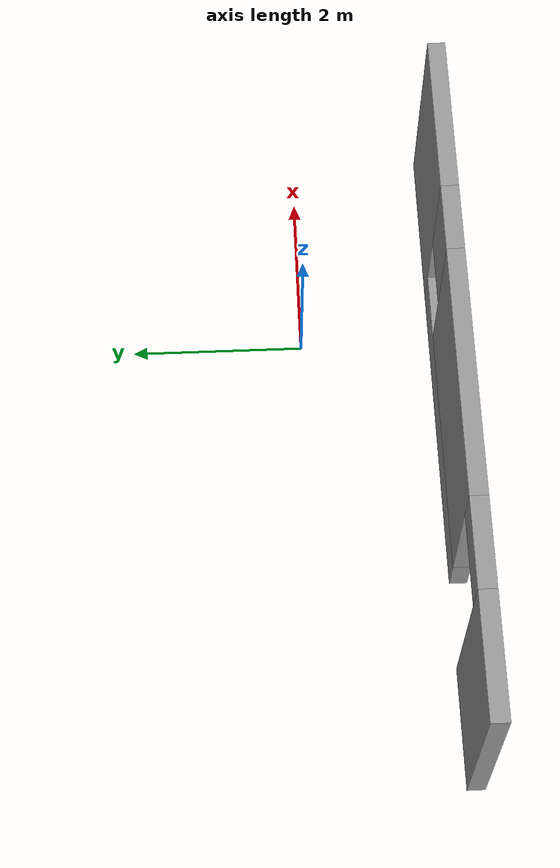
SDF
<?xml version='1.0'?>
<sdf version='1.4'>
  <model name='BuildingDefaultName'>
    <link name='Wall_0'>
      <pose>-1.435 -1.63 0 0 -0 3.14159</pose>
      <visual name='Wall_0_Visual_0'>
        <pose>-3.025 0 1.25 0 -0 0</pose>
        <geometry>
          <box>
            <size>1.92 0.2 2.5</size>
          </box>
        </geometry>
        <material>
          <script>
            <uri>file://media/materials/scripts/gazebo.material</uri>
            <name>Gazebo/Grey</name>
          </script>
        </material>
      </visual>
      <collision name='Wall_0_Collision_0'>
        <geometry>
          <box>
            <size>1.92 0.2 2.5</size>
          </box>
        </geometry>
        <pose>-3.025 0 1.25 0 -0 0</pose>
      </collision>
      <visual name='Wall_0_Visual_1'>
        <pose>3.305 0 1.25 0 -0 0</pose>
        <geometry>
          <box>
            <size>1.36 0.2 2.5</size>
          </box>
        </geometry>
        <material>
          <script>
            <uri>file://media/materials/scripts/gazebo.material</uri>
            <name>Gazebo/Grey</name>
          </script>
        </material>
      </visual>
      <collision name='Wall_0_Collision_1'>
        <geometry>
          <box>
            <size>1.36 0.2 2.5</size>
          </box>
        </geometry>
        <pose>3.305 0 1.25 0 -0 0</pose>
      </collision>
      <visual name='Wall_0_Visual_2'>
        <pose>-0.22 0 0.25 0 -0 0</pose>
        <geometry>
          <box>
            <size>3.69 0.2 0.5</size>
          </box>
        </geometry>
        <material>
          <script>
            <uri>file://media/materials/scripts/gazebo.material</uri>
            <name>Gazebo/Grey</name>
          </script>
        </material>
      </visual>
      <collision name='Wall_0_Collision_2'>
        <geometry>
          <box>
            <size>3.69 0.2 0.5</size>
          </box>
        </geometry>
        <pose>-0.22 0 0.25 0 -0 0</pose>
      </collision>
      <visual name='Wall_0_Visual_3'>
        <pose>0.18 0 1.5 0 -0 0</pose>
        <geometry>
          <box>
            <size>2.89 0.2 2</size>
          </box>
        </geometry>
        <material>
          <script>
            <uri>file://media/materials/scripts/gazebo.material</uri>
            <name>Gazebo/Grey</name>
          </script>
        </material>
      </visual>
      <collision name='Wall_0_Collision_3'>
        <geometry>
          <box>
            <size>2.89 0.2 2</size>
          </box>
        </geometry>
        <pose>0.18 0 1.5 0 -0 0</pose>
      </collision>
      <visual name='Wall_0_Visual_4'>
        <pose>-1.665 0 1.9 0 -0 0</pose>
        <geometry>
          <box>
            <size>0.8 0.2 1.2</size>
          </box>
        </geometry>
        <material>
          <script>
            <uri>file://media/materials/scripts/gazebo.material</uri>
            <name>Gazebo/Grey</name>
          </script>
        </material>
      </visual>
      <collision name='Wall_0_Collision_4'>
        <geometry>
          <box>
            <size>0.8 0.2 1.2</size>
          </box>
        </geometry>
        <pose>-1.665 0 1.9 0 -0 0</pose>
      </collision>
      <visual name='Wall_0_Visual_5'>
        <pose>2.125 0 2.25 0 -0 0</pose>
        <geometry>
          <box>
            <size>1 0.2 0.5</size>
          </box>
        </geometry>
        <material>
          <script>
            <uri>file://media/materials/scripts/gazebo.material</uri>
            <name>Gazebo/Grey</name>
          </script>
        </material>
      </visual>
      <collision name='Wall_0_Collision_5'>
        <geometry>
          <box>
            <size>1 0.2 0.5</size>
          </box>
        </geometry>
        <pose>2.125 0 2.25 0 -0 0</pose>
      </collision>
    </link>
    <static>1</static>
  </model>
</sdf>
